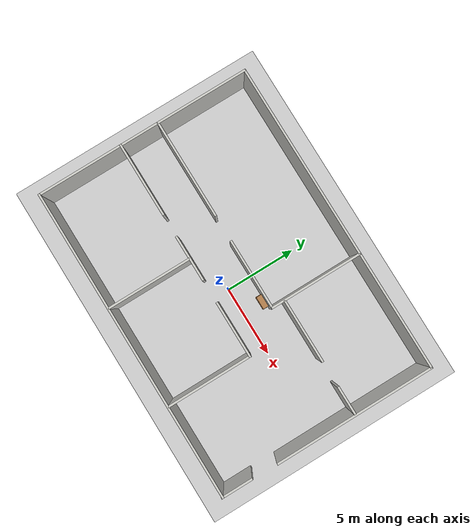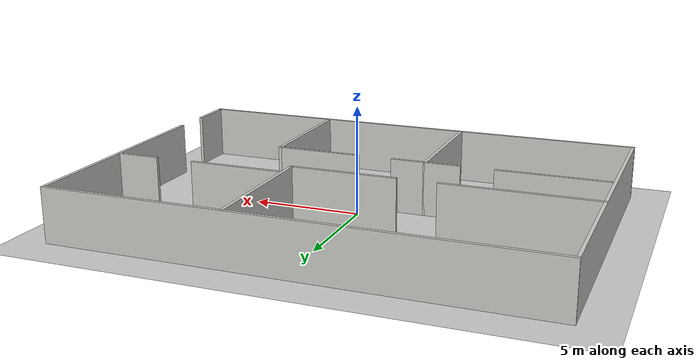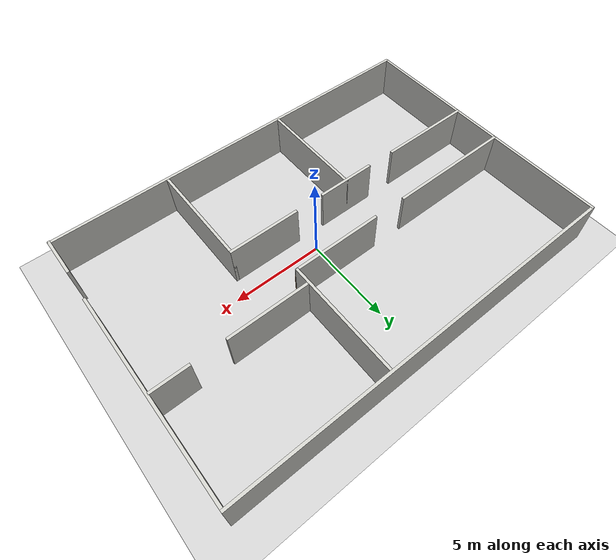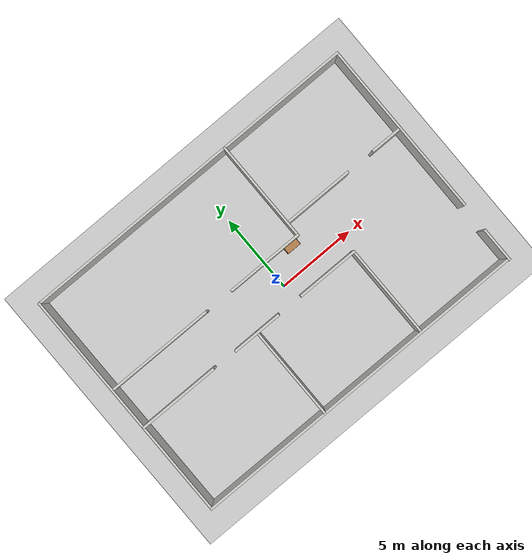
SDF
<sdf version="1.6">
 <world name="default">
  <model name="ground_plane">
   <static>1</static>
   <link name="link">
    <collision name="collision">
     <geometry><plane><normal>0 0 1</normal><size>100 100</size></plane></geometry>
     <surface><friction><ode><mu>100</mu><mu2>50</mu2></ode></friction></surface>
    </collision>
    <visual name="visual">
     <cast_shadows>0</cast_shadows>
     <geometry><plane><normal>0 0 1</normal><size>100 100</size></plane></geometry>
     <material>
      <script><uri>file://media/materials/scripts/gazebo.material</uri><name>Gazebo/Grey</name></script>
     </material>
    </visual>
   </link>
  </model>
  <model name="Indoor_4rooms">
   <pose>-0.2188 0.57303 0 0 -0 0</pose>
   <link name="Wall_1">
    <collision name="Wall_1_Collision">
     <geometry><box><size>2.25 0.15 2.5</size></box></geometry>
     <pose>0 0 1.25 0 -0 0</pose>
    </collision>
    <visual name="Wall_1_Visual">
     <pose>0 0 1.25 0 -0 0</pose>
     <geometry><box><size>2.25 0.15 2.5</size></box></geometry>
     <material>
      <script><uri>file://media/materials/scripts/gazebo.material</uri><name>Gazebo/CeilingTiled</name></script>
      <ambient>1 1 1 1</ambient>
     </material>
     <meta><layer>0</layer></meta>
    </visual>
    <pose>10.9353 -6.5267 0 0 -0 -1.5708</pose>
   </link>
   <link name="Wall_10">
    <collision name="Wall_10_Collision">
     <geometry><box><size>5 0.15 2.5</size></box></geometry>
     <pose>0 0 1.25 0 -0 0</pose>
    </collision>
    <visual name="Wall_10_Visual">
     <pose>0 0 1.25 0 -0 0</pose>
     <geometry><box><size>5 0.15 2.5</size></box></geometry>
     <material>
      <script><uri>file://media/materials/scripts/gazebo.material</uri><name>Gazebo/CeilingTiled</name></script>
      <ambient>1 1 1 1</ambient>
     </material>
     <meta><layer>0</layer></meta>
    </visual>
    <pose>0.254256 1.14992 0 0 -0 0</pose>
   </link>
   <link name="Wall_13">
    <collision name="Wall_13_Collision">
     <geometry><box><size>5.25 0.15 2.5</size></box></geometry>
     <pose>0 0 1.25 0 -0 0</pose>
    </collision>
    <visual name="Wall_13_Visual">
     <pose>0 0 1.25 0 -0 0</pose>
     <geometry><box><size>5.25 0.15 2.5</size></box></geometry>
     <material>
      <script><uri>file://media/materials/scripts/gazebo.material</uri><name>Gazebo/CeilingTiled</name></script>
      <ambient>1 1 1 1</ambient>
     </material>
     <meta><layer>0</layer></meta>
    </visual>
    <pose>-8.42821 -1.58421 0 0 -0 0</pose>
   </link>
   <link name="Wall_15">
    <collision name="Wall_15_Collision">
     <geometry><box><size>6.5 0.15 2.5</size></box></geometry>
     <pose>0 0 1.25 0 -0 0</pose>
    </collision>
    <visual name="Wall_15_Visual">
     <pose>0 0 1.25 0 -0 0</pose>
     <geometry><box><size>6.5 0.15 2.5</size></box></geometry>
     <material>
      <script><uri>file://media/materials/scripts/gazebo.material</uri><name>Gazebo/CeilingTiled</name></script>
      <ambient>1 1 1 1</ambient>
     </material>
     <meta><layer>0</layer></meta>
    </visual>
    <pose>2.67926 4.35152 0 0 -0 1.5708</pose>
   </link>
   <link name="Wall_17">
    <collision name="Wall_17_Collision">
     <geometry><box><size>3.25 0.15 2.5</size></box></geometry>
     <pose>0 0 1.25 0 -0 0</pose>
    </collision>
    <visual name="Wall_17_Visual">
     <pose>0 0 1.25 0 -0 0</pose>
     <geometry><box><size>3.25 0.15 2.5</size></box></geometry>
     <material>
      <script><uri>file://media/materials/scripts/gazebo.material</uri><name>Gazebo/CeilingTiled</name></script>
      <ambient>1 1 1 1</ambient>
     </material>
     <meta><layer>0</layer></meta>
    </visual>
    <pose>-2.64516 -1.61081 0 0 -0 0</pose>
   </link>
   <link name="Wall_19">
    <collision name="Wall_19_Collision">
     <geometry><box><size>6 0.15 2.5</size></box></geometry>
     <pose>0 0 1.25 0 -0 0</pose>
    </collision>
    <visual name="Wall_19_Visual">
     <pose>0 0 1.25 0 -0 0</pose>
     <geometry><box><size>6 0.15 2.5</size></box></geometry>
     <material>
      <script><uri>file://media/materials/scripts/gazebo.material</uri><name>Gazebo/CeilingTiled</name></script>
      <ambient>1 1 1 1</ambient>
     </material>
     <meta><layer>0</layer></meta>
    </visual>
    <pose>-2.62574 -4.53581 0 0 -0 -1.5708</pose>
   </link>
   <link name="Wall_2">
    <collision name="Wall_2_Collision">
     <geometry><box><size>22.0738 0.15 2.5</size></box></geometry>
     <pose>0 0 1.25 0 -0 0</pose>
    </collision>
    <visual name="Wall_2_Visual">
     <pose>0 0 1.25 0 -0 0</pose>
     <geometry><box><size>22.0738 0.15 2.5</size></box></geometry>
     <material>
      <script><uri>file://media/materials/scripts/gazebo.material</uri><name>Gazebo/CeilingTiled</name></script>
      <ambient>1 1 1 1</ambient>
     </material>
     <meta><layer>0</layer></meta>
    </visual>
    <pose>-0.0266 -7.55011 0 0 -0 3.14159</pose>
   </link>
   <link name="Wall_24">
    <collision name="Wall_24_Collision">
     <geometry><box><size>4.5 0.15 2.5</size></box></geometry>
     <pose>0 0 1.25 0 -0 0</pose>
    </collision>
    <visual name="Wall_24_Visual">
     <pose>0 0 1.25 0 -0 0</pose>
     <geometry><box><size>4.5 0.15 2.5</size></box></geometry>
     <material>
      <script><uri>file://media/materials/scripts/gazebo.material</uri><name>Gazebo/CeilingTiled</name></script>
      <ambient>1 1 1 1</ambient>
     </material>
     <meta><layer>0</layer></meta>
    </visual>
    <pose>4.92204 2.04716 0 0 -0 0</pose>
   </link>
   <link name="Wall_26">
    <collision name="Wall_26_Collision">
     <geometry><box><size>2 0.15 2.5</size></box></geometry>
     <pose>0 0 1.25 0 -0 0</pose>
    </collision>
    <visual name="Wall_26_Visual">
     <pose>0 0 1.25 0 -0 0</pose>
     <geometry><box><size>2 0.15 2.5</size></box></geometry>
     <material>
      <script><uri>file://media/materials/scripts/gazebo.material</uri><name>Gazebo/CeilingTiled</name></script>
      <ambient>1 1 1 1</ambient>
     </material>
     <meta><layer>0</layer></meta>
    </visual>
    <pose>9.94657 2.04386 0 0 -0 0</pose>
   </link>
   <link name="Wall_3">
    <collision name="Wall_3_Collision">
     <geometry><box><size>15.2502 0.15 2.5</size></box></geometry>
     <pose>0 0 1.25 0 -0 0</pose>
    </collision>
    <visual name="Wall_3_Visual">
     <pose>0 0 1.25 0 -0 0</pose>
     <geometry><box><size>15.2502 0.15 2.5</size></box></geometry>
     <material>
      <script><uri>file://media/materials/scripts/gazebo.material</uri><name>Gazebo/CeilingTiled</name></script>
      <ambient>1 1 1 1</ambient>
     </material>
     <meta><layer>0</layer></meta>
    </visual>
    <pose>-10.9885 -0 0 0 -0 1.5708</pose>
   </link>
   <link name="Wall_33">
    <collision name="Wall_33_Collision">
     <geometry><box><size>4 0.15 2.5</size></box></geometry>
     <pose>0 0 1.25 0 -0 0</pose>
    </collision>
    <visual name="Wall_33_Visual">
     <pose>0 0 1.25 0 -0 0</pose>
     <geometry><box><size>4 0.15 2.5</size></box></geometry>
     <material>
      <script><uri>file://media/materials/scripts/gazebo.material</uri><name>Gazebo/CeilingTiled</name></script>
      <ambient>1 1 1 1</ambient>
     </material>
     <meta><layer>0</layer></meta>
    </visual>
    <pose>2.57158 -1.61429 0 0 -0 0</pose>
   </link>
   <link name="Wall_34">
    <collision name="Wall_34_Collision">
     <geometry><box><size>6 0.15 2.5</size></box></geometry>
     <pose>0 0 1.25 0 -0 0</pose>
    </collision>
    <visual name="Wall_34_Visual">
     <pose>0 0 1.25 0 -0 0</pose>
     <geometry><box><size>6 0.15 2.5</size></box></geometry>
     <material>
      <script><uri>file://media/materials/scripts/gazebo.material</uri><name>Gazebo/CeilingTiled</name></script>
      <ambient>1 1 1 1</ambient>
     </material>
     <meta><layer>0</layer></meta>
    </visual>
    <pose>4.49657 -4.53929 0 0 -0 -1.5708</pose>
   </link>
   <link name="Wall_4">
    <collision name="Wall_4_Collision">
     <geometry><box><size>22.127 0.15 2.5</size></box></geometry>
     <pose>0 0 1.25 0 -0 0</pose>
    </collision>
    <visual name="Wall_4_Visual">
     <pose>0 0 1.25 0 -0 0</pose>
     <geometry><box><size>22.127 0.15 2.5</size></box></geometry>
     <material>
      <script><uri>file://media/materials/scripts/gazebo.material</uri><name>Gazebo/CeilingTiled</name></script>
      <ambient>1 1 1 1</ambient>
     </material>
     <meta><layer>0</layer></meta>
    </visual>
    <pose>0 7.5767 0 0 -0 0</pose>
   </link>
   <link name="Wall_5">
    <collision name="Wall_5_Collision">
     <geometry><box><size>11.2768 0.15 2.5</size></box></geometry>
     <pose>0 0 1.25 0 -0 0</pose>
    </collision>
    <visual name="Wall_5_Visual">
     <pose>0 0 1.25 0 -0 0</pose>
     <geometry><box><size>11.2768 0.15 2.5</size></box></geometry>
     <material>
      <script><uri>file://media/materials/scripts/gazebo.material</uri><name>Gazebo/CeilingTiled</name></script>
      <ambient>1 1 1 1</ambient>
     </material>
     <meta><layer>0</layer></meta>
    </visual>
    <pose>10.9885 1.9867 0 0 -0 -1.5708</pose>
   </link>
   <link name="Wall_8">
    <collision name="Wall_8_Collision">
     <geometry><box><size>7 0.15 2.5</size></box></geometry>
     <pose>0 0 1.25 0 -0 0</pose>
    </collision>
    <visual name="Wall_8_Visual">
     <pose>0 0 1.25 0 -0 0</pose>
     <geometry><box><size>7 0.15 2.5</size></box></geometry>
     <material>
      <script><uri>file://media/materials/scripts/gazebo.material</uri><name>Gazebo/CeilingTiled</name></script>
      <ambient>1 1 1 1</ambient>
     </material>
     <meta><layer>0</layer></meta>
    </visual>
    <pose>-7.54137 1.1642 0 0 -0 0</pose>
   </link>
   <static>1</static>
  </model>
  <model name="bookshelf">
   <static>1</static>
   <link name="link">
    <inertial><mass>1</mass></inertial>
    <collision name="back">
     <pose>0 0.005 0.6 0 -0 0</pose>
     <geometry><box><size>0.9 0.01 1.2</size></box></geometry>
    </collision>
    <visual name="visual1">
     <pose>0 0.005 0.6 0 -0 0</pose>
     <geometry><box><size>0.9 0.01 1.2</size></box></geometry>
     <material>
      <script><uri>file://media/materials/scripts/gazebo.material</uri><name>Gazebo/Wood</name></script>
     </material>
    </visual>
    <collision name="left_side">
     <pose>0.45 -0.195 0.6 0 -0 0</pose>
     <geometry><box><size>0.02 0.4 1.2</size></box></geometry>
    </collision>
    <visual name="visual2">
     <pose>0.45 -0.195 0.6 0 -0 0</pose>
     <geometry><box><size>0.02 0.4 1.2</size></box></geometry>
     <material>
      <script><uri>file://media/materials/scripts/gazebo.material</uri><name>Gazebo/Wood</name></script>
     </material>
    </visual>
    <collision name="right_side">
     <pose>-0.45 -0.195 0.6 0 -0 0</pose>
     <geometry><box><size>0.02 0.4 1.2</size></box></geometry>
    </collision>
    <visual name="visual3">
     <pose>-0.45 -0.195 0.6 0 -0 0</pose>
     <geometry><box><size>0.02 0.4 1.2</size></box></geometry>
     <material>
      <script><uri>file://media/materials/scripts/gazebo.material</uri><name>Gazebo/Wood</name></script>
     </material>
    </visual>
    <collision name="bottom">
     <pose>0 -0.195 0.03 0 -0 0</pose>
     <geometry><box><size>0.88 0.4 0.06</size></box></geometry>
    </collision>
    <visual name="visual4">
     <pose>0 -0.195 0.03 0 -0 0</pose>
     <geometry><box><size>0.88 0.4 0.06</size></box></geometry>
     <material>
      <script><uri>file://media/materials/scripts/gazebo.material</uri><name>Gazebo/Wood</name></script>
     </material>
    </visual>
    <collision name="top">
     <pose>0 -0.195 1.19 0 -0 0</pose>
     <geometry><box><size>0.88 0.4 0.02</size></box></geometry>
    </collision>
    <visual name="visual5">
     <pose>0 -0.195 1.19 0 -0 0</pose>
     <geometry><box><size>0.88 0.4 0.02</size></box></geometry>
     <material>
      <script><uri>file://media/materials/scripts/gazebo.material</uri><name>Gazebo/Wood</name></script>
     </material>
    </visual>
    <collision name="low_shelf">
     <pose>0 -0.195 0.43 0 -0 0</pose>
     <geometry><box><size>0.88 0.4 0.02</size></box></geometry>
    </collision>
    <visual name="visual6">
     <pose>0 -0.195 0.43 0 -0 0</pose>
     <geometry><box><size>0.88 0.4 0.02</size></box></geometry>
     <material>
      <script><uri>file://media/materials/scripts/gazebo.material</uri><name>Gazebo/Wood</name></script>
     </material>
    </visual>
    <collision name="high_shelf">
     <pose>0 -0.195 0.8 0 -0 0</pose>
     <geometry><box><size>0.88 0.4 0.02</size></box></geometry>
    </collision>
    <visual name="visual7">
     <pose>0 -0.195 0.8 0 -0 0</pose>
     <geometry><box><size>0.88 0.4 0.02</size></box></geometry>
     <material>
      <script><uri>file://media/materials/scripts/gazebo.material</uri><name>Gazebo/Wood</name></script>
     </material>
    </visual>
   </link>
   <pose>1.85277 1.65487 0 0 -0 0</pose>
  </model>
 </world>
</sdf>
